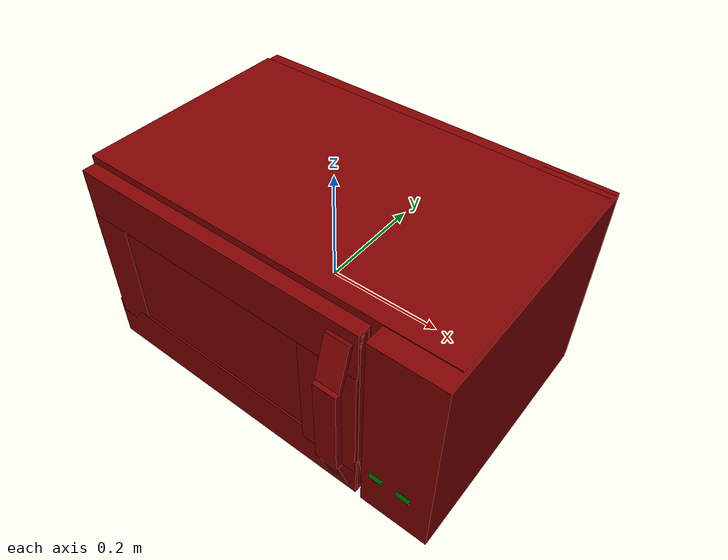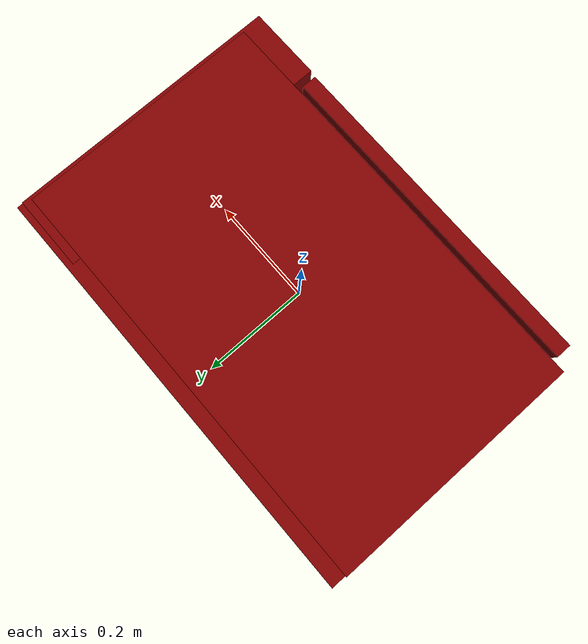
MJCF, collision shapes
<?xml version='1.0' encoding='UTF-8'?>
<mujoco model="model">
  <option timestep="0.002" gravity="0.0 0.0 -9.81"/>
  <compiler angle="radian"/>
  <asset>
    <mesh file="visuals/door.obj" name="door_vis"/>
    <mesh file="visuals/door_Clear.obj" name="door_Clear_vis"/>
    <mesh file="visuals/Body001.obj" name="Body001_vis"/>
    <mesh file="visuals/Disc001.obj" name="Disc001_vis"/>
    <texture file="visuals/T_BC001.png" name="Body001_material" type="2d"/>
    <material name="Body001_material" rgba="1 1 1 1.0" texture="Body001_material" shininess="0.4472135901451111" specular="1"/>
    <texture file="visuals/T_BC001.png" name="door_material" type="2d"/>
    <material name="door_material" rgba="1 1 1 1.0" texture="door_material" shininess="0.4472135901451111" specular="2"/>
    <material name="door_Clear_material" rgba="0.057967204600572586 0.057967204600572586 0.057967204600572586 0.800000011920929" shininess="0.5" specular="0.3103448502657381"/>
    <texture file="visuals/T_BC001.png" name="Disc001_material" type="2d"/>
    <material name="Disc001_material" rgba="1 1 1 1.0" texture="Disc001_material" shininess="0.0472135901451111" specular="0.5103448502657381"/>
  </asset>
  <default>
    <default class="visual">
      <geom conaffinity="0" contype="0" group="1" type="mesh"/>
    </default>
    <default class="collision">
      <geom group="0" rgba="0.5 0 0 0.5"/>
    </default>
    <default class="spawn">
      <geom group="0" rgba="1 1 1 0.5" contype="0" conaffinity="0"/>
      <site group="0" rgba="1 1 1 0.5"/>
    </default>
    <default class="region">
      <geom group="1" conaffinity="0" contype="0" rgba="0 1 0 0"/>
    </default>
  </default>
  <worldbody>
    <body>
      <body name="object">
        <geom class="collision" type="cylinder" pos="-0.05926709622144699 0.014490551315248013 -0.1551300585269928" size="0.1691022515296936 0.0016365707851946354" quat="1.0 0.0 0.0 0.0" name="tray" rgba="0 1 0 0.5"/>
        <geom class="collision" type="box" pos="0.24829047918319702 -0.2152884602546692 -0.09971180558204651" size="0.011686699464917183 0.00034437308204360306 0.007513754535466433" quat="1.0 0.0 0.0 0.0" name="start_button" rgba="0.0 0.5 0 0.5"/>
        <geom class="collision" type="box" pos="0.29658305644989014 -0.21532322466373444 -0.09971180558204651" size="0.011686699464917183 0.00034437308204360306 0.007513738702982664" quat="1.0 0.0 0.0 0.0" name="stop_button" rgba="0.0 0.5 0 0.5"/>
        <geom mesh="Body001_vis" type="mesh" solimp="0.998 0.998 0.001" solref="0.001 1" friction="0.95 0.3 0.1" class="visual" material="Body001_material"/>
        <geom class="collision" type="box" pos="-0.0029988468158990145 0.021945038810372353 0.16175206005573273" size="0.3399089276790619 0.2013547271490097 0.024091042578220367" quat="1.0 0.0 0.0 0.0"/>
        <geom class="collision" type="box" pos="-0.3037589192390442 0.02224593423306942 -0.006149275228381157" size="0.03915019705891609 0.2010539025068283 0.16004009544849396" quat="1.0 0.0 0.0 0.0"/>
        <geom class="collision" type="box" pos="-0.0030002526473253965 0.022127004340291023 -0.17280800640583038" size="0.3399103283882141 0.2011728584766388 0.013036449439823627" quat="1.0 0.0 0.0 0.0"/>
        <geom class="collision" type="box" pos="0.2825818657875061 0.01115063764154911 -0.0001275152462767437" size="0.06032470613718033 0.22574594616889954 0.18446725606918335" quat="1.0 0.0 0.0 0.0"/>
        <geom class="collision" type="box" pos="6.250850856304169e-05 0.23124539852142334 -0.0006547155790030956" size="0.34142738580703735 0.015475999563932419 0.1845119595527649" quat="1.0 0.0 0.0 0.0"/>
        <geom class="collision" type="box" pos="0.20871424674987793 0.019670363515615463 -0.0002701125922612846" size="0.05820322036743164 0.19766144454479218 0.1843198835849762" quat="1.0 0.0 0.0 0.0"/>
        <body name="door">
          <joint axis="0.0 0.0 1.0" pos="-0.32191070914268494 -0.1988546997308731 -2.34026718004543e-08" limited="true" name="microjoint" range="-1.5707963267948966 0.0" type="hinge" damping="1" frictionloss="1" armature=".01" stiffness="0.05"/>
          <geom mesh="door_vis" type="mesh" solimp="0.998 0.998 0.001" solref="0.001 1" friction="0.95 0.3 0.1" class="visual" material="door_material"/>
          <geom class="collision" type="box" pos="-0.056091923266649246 -0.2002543956041336 0.14136719703674316" size="0.26716697216033936 0.012206053361296654 0.043230097740888596" quat="1.0 0.0 0.0 0.0"/>
          <geom class="collision" type="box" pos="0.18180176615715027 -0.24039852619171143 0.0034949048422276974" size="0.01969490386545658 0.00616862066090107 0.08495566993951797" quat="1.0 0.0 0.0 0.0" name="door_handle_main"/>
          <geom class="collision" type="box" pos="-0.07322622090578079 -0.20714260637760162 -0.0022970291320234537" size="0.18598675727844238 0.0020905330311506987 0.10313322395086288" quat="1.0 0.0 0.0 0.0"/>
          <geom class="collision" type="box" pos="0.18254882097244263 -0.22656281292438507 0.12878836691379547" size="0.020107556134462357 0.004120019730180502 0.038580454885959625" quat="0.989936888217926 -0.14150944352149963 3.142149119795367e-17 -8.3248511049496e-25"/>
          <geom class="collision" type="box" pos="0.18254876136779785 -0.22755929827690125 -0.12124262005090714" size="0.020107556134462357 0.004120019730180502 0.038580454885959625" quat="1.927478336938293e-07 -2.755290573475122e-08 -0.14150944352149963 0.989936888217926"/>
          <geom class="collision" type="box" pos="-0.05872359126806259 -0.19996461272239685 -0.14258578419685364" size="0.2697986662387848 0.012495744042098522 0.04201705753803253" quat="1.0 0.0 0.0 0.0"/>
          <geom class="collision" type="box" pos="-0.2877623438835144 -0.2004784792661667 -0.01508026197552681" size="0.036359477788209915 0.011981871910393238 0.11321491003036499" quat="1.0 0.0 0.0 0.0"/>
          <geom class="collision" type="box" pos="0.1574314683675766 -0.20070096850395203 -0.015080266632139683" size="0.05123405158519745 0.012144960463047028 0.11321517825126648" quat="1.0 0.0 0.0 0.0"/>
          <geom class="collision" type="box" pos="-0.056091904640197754 -0.200254425406456 0.0016030499245971441" size="0.26716697216033936 0.008098918944597244 0.17942531406879425" quat="1.0 0.0 0.0 0.0" name="door_main"/>
          <body name="door_Clear">
            <geom mesh="door_Clear_vis" type="mesh" solimp="0.998 0.998 0.001" solref="0.001 1" friction="0.95 0.3 0.1" class="visual" material="door_Clear_material"/>
            <geom class="collision" type="box" pos="-0.07322622090578079 -0.20714260637760162 -0.0022970291320234537" size="0.18598675727844238 0.0020905330311506987 0.10313322395086288" quat="1.0 0.0 0.0 0.0"/>
          </body>
        </body>
        <body name="Disc001">
          <joint axis="0.0 0.0 1.0" pos="-0.05762152001261711 0.01738528348505497 -0.15742632746696472" limited="false" name="Disc001_joint" range="0 360" type="hinge" damping="1" frictionloss="1" armature=".01" stiffness="0.05"/>
          <geom mesh="Disc001_vis" type="mesh" solimp="0.998 0.998 0.001" solref="0.001 1" friction="0.95 0.3 0.1" class="visual" material="Disc001_material"/>
          <geom class="collision" type="cylinder" pos="-0.05926709622144699 0.014490551315248013 -0.158477321267128" size="0.1691078394651413 0.0009319515665993094" quat="1.0 0.0 0.0 0.0"/>
        </body>
        <geom class="region" name="reg_int" type="box" pos="-0.05644223839044571 -0.02054775506258011 -0.010933183133602142" size="0.20211145824193955 0.15162499791383743 0.1435602212548256"/>
        <geom class="region" name="reg_main" type="box" pos="-7.450580596923828e-09 0.01491693314164877 -4.68053436009086e-08" size="0.3439105579853058 0.2328541705608368 0.18684443628787994"/>
      <geom class="region" name="reg_tray" type="cylinder" pos="-0.05926709622144699 0.014490551315248013 -0.010433224810287356" size="0.1691022515296936 0.1420602629315108"/></body>
    </body>
  </worldbody>
  <actuator>
    <motor name="microjoint_actuator" joint="microjoint" gear="10"/>
    <motor name="Disc001_joint_actuator" joint="Disc001_joint" gear="10"/>
  </actuator>
</mujoco>
